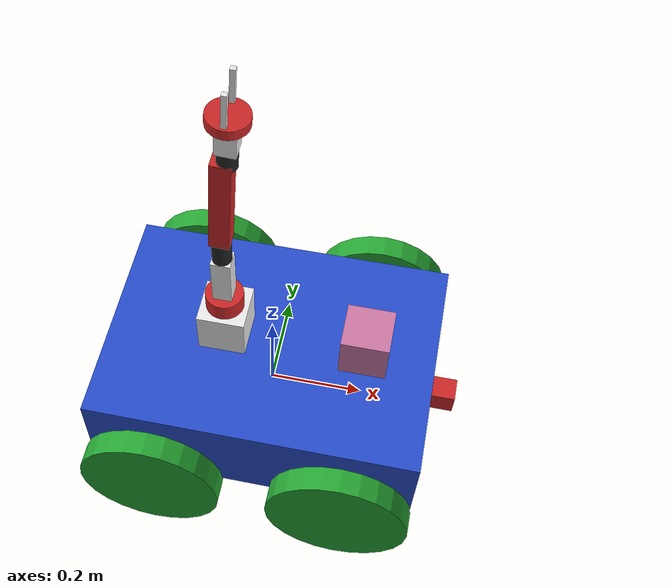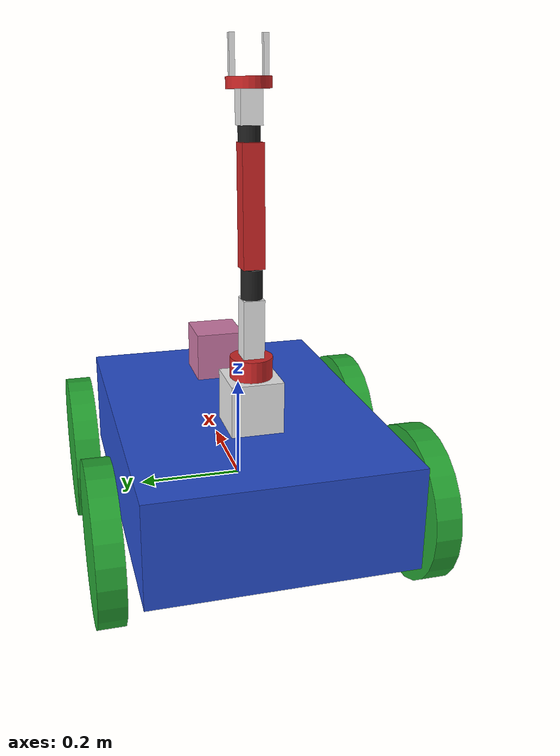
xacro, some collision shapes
<?xml version='1.0'?>

<robot name="atom" xmlns:xacro="http://www.ros.org/wiki/xacro">
	<xacro:property name="robot_name" value="atom" />
	<xacro:property name="robot_chassis_mass" value="35"/>
	<xacro:property name="robot_chassis_length" value="0.2"/>
	<xacro:property name="robot_chassis_radius" value="0.25"/>
	<xacro:property name="robot_caster_wheel_radius" value="0.05"/>
	<xacro:property name="robot_caster_wheel_radius_collision" value="0.0499"/>

	<xacro:property name="robot_wheel_mass" value="3"/>
	<xacro:property name="robot_wheel_length" value="0.05"/>
	<xacro:property name="robot_wheel_radius" value="0.15"/>

	<xacro:property name="camera_mass" value="0.1"/>
	<xacro:property name="hokoyu_mass" value="1e-5"/>

	<!-- Make Chassis of Bot -->
	<link name="chassis">
		<pose>0 0 0.1 0 0 0</pose>

		<inertial>
			<mass value="${robot_chassis_mass}"/>
      		<origin xyz="0.0 0 0" rpy=" 0 0 0"/>

      		<inertia
      			ixx="0.725" ixy="0" ixz="0"
      			iyy="1.325" iyz="0"
      			izz="1.85"
      		/>
		</inertial>

		<collision name="collision">
			<origin xyz="0 0 0.05" rpy=" 0 0 0"/>
			<geometry>
				<box size="0.7 0.5 0.2"/>
			</geometry>
		</collision>

		<visual name="chassis_visual">
			<origin xyz="0 0 0.05" rpy=" 0 0 0"/>
			<geometry>
				<box size="0.7 0.5 0.2"/>
			</geometry>

		</visual>

	</link>

	<!-- Right Wheel Back -->
	<link name="right_wheel_back">
		<inertial>
			<mass value="${robot_wheel_mass}"/>
			<origin xyz="0 0 0" rpy="0 1.5707 1.5707"/>
			<inertia
				ixx="0.0175" ixy="0.0" ixz="0.0"
				iyy="0.0175" iyz="0.0"
				izz="0.03375"
			/>
		</inertial>

		<visual>
			<origin xyz="0 0 0" rpy="0 1.5707 1.5707"/>
			<geometry>
				<cylinder radius="${robot_wheel_radius}" length="${robot_wheel_length}"/>
			</geometry>
		</visual>

		<collision>
			<origin xyz="0 0 0" rpy="0 1.5707 1.5707"/>
			<geometry>
				<cylinder radius="${robot_wheel_radius}" length="${robot_wheel_length}"/>
			</geometry>
		</collision>

	</link>

	<!-- Right Wheel Front-->
	<link name="right_wheel_front">
	<inertial>
			<mass value="${robot_wheel_mass}"/>
			<origin xyz="0 0 0" rpy="0 1.5707 1.5707"/>
			<inertia
				ixx="0.0175" ixy="0.0" ixz="0.0"
				iyy="0.0175" iyz="0.0"
				izz="0.03375"
			/>
		</inertial>

		<visual>
			<origin xyz="0 0 0" rpy="0 1.5707 1.5707"/>
			<geometry>
				<cylinder radius="${robot_wheel_radius}" length="${robot_wheel_length}"/>
			</geometry>
		</visual>

		<collision>
			<origin xyz="0 0 0" rpy="0 1.5707 1.5707"/>
			<geometry>
				<cylinder radius="${robot_wheel_radius}" length="${robot_wheel_length}"/>
			</geometry>
		</collision>

	</link>

	<!-- Left wheel Back-->
	<link name="left_wheel_back">
		<inertial>
			<mass value="${robot_wheel_mass}"/>
			<origin xyz="0 0 0" rpy="0 1.5707 1.5707"/>
			<inertia
				ixx="0.0175" ixy="0.0" ixz="0.0"
				iyy="0.0175" iyz="0.0"
				izz="0.03375"
			/>
		</inertial>

		<visual>
			<origin xyz="0 0 0" rpy="0 1.5707 1.5707"/>
			<geometry>
				<cylinder radius="${robot_wheel_radius}" length="${robot_wheel_length}"/>
			</geometry>
		</visual>

		<collision>
			<origin xyz="0 0 0" rpy="0 1.5707 1.5707"/>
			<geometry>
				<cylinder radius="${robot_wheel_radius}" length="${robot_wheel_length}"/>
			</geometry>
		</collision>

	</link>

	<!-- Left wheel Front-->
	<link name="left_wheel_front">
		<inertial>
			<mass value="${robot_wheel_mass}"/>
			<origin xyz="0 0 0" rpy="0 1.5707 1.5707"/>
			<inertia
				ixx="0.0175" ixy="0.0" ixz="0.0"
				iyy="0.0175" iyz="0.0"
				izz="0.03375"
			/>
		</inertial>

		<visual>
			<origin xyz="0 0 0" rpy="0 1.5707 1.5707"/>
			<geometry>
				<cylinder radius="${robot_wheel_radius}" length="${robot_wheel_length}"/>
			</geometry>
		</visual>

		<collision>
			<origin xyz="0 0 0" rpy="0 1.5707 1.5707"/>
			<geometry>
				<cylinder radius="${robot_wheel_radius}" length="${robot_wheel_length}"/>
			</geometry>
		</collision>

	</link>

	<!-- Camera -->
	<link name="camera">
		<inertial>
			<mass value="${camera_mass}"/>
			<origin xyz="0 0 0" rpy="0 0 0"/>
			<inertia
		        ixx="1e-6" ixy="0.0" ixz="0.0"
		        iyy="1e-6" iyz="0.0"
		        izz="1e-6"
		      />
		</inertial>

		<visual>
			<origin xyz="0 0 0" rpy="0 0 0"/>
			<geometry>
				<box size="0.05 0.05 0.05"/>
			</geometry>
		</visual>

		<collision>
			<origin xyz="0 0 0" rpy="0 0 0"/>
			<geometry>
				<box size="0.05 0.05 0.05"/>
			</geometry>
		</collision>
	</link>

	<!-- Hokuyo Lidar -->
	<link name="hokuyo">
		<inertial>
			<mass value="${hokoyu_mass}"/>
			<origin xyz="0 0 0" rpy="0 0 0"/>

			<inertia
		        ixx="1e-6" ixy="0.0" ixz="0.0"
		        iyy="1e-6" iyz="0.0"
		        izz="1e-6"
		      />
		</inertial>

		<visual>
			<origin xyz="0 0 0" rpy="0 0 0"/>
			<geometry>
				<mesh filename="package://atom/meshes/hokuyo.dae"/>
			</geometry>
		</visual>

		<collision>
			<origin xyz="0 0 0" rpy="0 0 0"/>
			<geometry>
				<box size="0.1 0.1 0.1"/>
			</geometry>
		</collision>
	</link>

	<!-- Project center to the ground -->
	<link name="robot_footprint"></link>

	<!-- Define Joints -->

	<!-- Right Wheel Joint Back-->
	<joint type="continuous" name="right_wheel_hinge_back">
	    <origin xyz="-0.2 -0.30 0" rpy="0 0 0" />
	    <parent link="chassis"/>
	    <child link="right_wheel_back" />
	    <axis xyz="0 1 0" rpy="0 0 0" />
	    <limit effort="10000" velocity="1000" />
	    <dynamics damping="1.0" friction="1.0" />
	</joint>

	<!-- Right Wheel Joint Front-->
	<joint type="continuous" name="right_wheel_hinge_front">
	    <origin xyz="0.2 -0.30 0" rpy="0 0 0" />
	    <parent link="chassis"/>
	    <child link="right_wheel_front" />
	    <axis xyz="0 1 0" rpy="0 0 0" />
	    <limit effort="10000" velocity="1000" />
	    <dynamics damping="1.0" friction="1.0" />
	</joint>

	<!-- Left Wheel Joint Back-->
	<joint type="continuous" name="left_wheel_hinge_back">
	    <origin xyz="-0.2 0.30 0" rpy="0 0 0" />
	    <parent link="chassis"/>
	    <child link="left_wheel_back" />
	    <axis xyz="0 1 0" rpy="0 0 0" />
	    <limit effort="10000" velocity="1000" />
	    <dynamics damping="1.0" friction="1.0" />
	</joint>

	<!-- Left Wheel Joint Front-->
	<joint type="continuous" name="left_wheel_hinge_front">
	    <origin xyz="0.2 0.30 0" rpy="0 0 0" />
	    <parent link="chassis"/>
	    <child link="left_wheel_front" />
	    <axis xyz="0 1 0" rpy="0 0 0" />
	    <limit effort="10000" velocity="1000" />
	    <dynamics damping="1.0" friction="1.0" />
	</joint>

	<!-- Camera Joint -->
	<joint name="camera_joint" type="fixed">
		<origin xyz="0.38 0 0.05" rpy="0 0 0" />
		<parent link="chassis"/>
		<child link="camera" />
		<axis xyz="0 1 0"/>
	</joint>

	<!-- Hokoyu Joint -->
	<joint name="hokuyo_joint" type="fixed">
	    <origin xyz="0.2 0 0.2" rpy="0 0 0" />
	    <parent link="chassis"/>
	    <child link="hokuyo" />
	    <axis xyz="0 1 0"/>
	</joint>

	<joint name="robot_footprint_joint" type="fixed">
		<origin xyz="0 0 0" rpy="0 0 0" />
		<parent link="robot_footprint"/>
		<child link="chassis" />
	</joint>

	<!-- Color of bot -->
	<gazebo reference="left_wheel_front">
		<material>Gazebo/Green</material>
		<kp>1000000.0</kp> <!-- kp and kd for rubber -->
		<kd>100.0</kd>
		<mu1>1.0</mu1>
		<mu2>1.0</mu2>
		<maxVel>1.0</maxVel>
		<minDepth>0.00</minDepth>
	</gazebo>

	<gazebo reference="left_wheel_back">
		<material>Gazebo/Green</material>
		<kp>1000000.0</kp> <!-- kp and kd for rubber -->
		<kd>100.0</kd>
		<mu1>1.0</mu1>
		<mu2>1.0</mu2>
		<maxVel>1.0</maxVel>
		<minDepth>0.00</minDepth>
	</gazebo>

	<gazebo reference="right_wheel_front">
		<material>Gazebo/Green</material>
		<kp>1000000.0</kp> <!-- kp and kd for rubber -->
		<kd>100.0</kd>
		<mu1>1.0</mu1>
		<mu2>1.0</mu2>
		<maxVel>1.0</maxVel>
		<minDepth>0.00</minDepth>
	</gazebo>
	<gazebo reference="right_wheel_back">
		<material>Gazebo/Green</material>
		<kp>1000000.0</kp> <!-- kp and kd for rubber -->
		<kd>100.0</kd>
		<mu1>1.0</mu1>
		<mu2>1.0</mu2>
		<maxVel>1.0</maxVel>
		<minDepth>0.00</minDepth>
	</gazebo>

	<gazebo reference="camera">
		<material>Gazebo/Red</material>
	</gazebo>

	<gazebo reference="chassis">
		<material>Gazebo/Blue</material>
	</gazebo>

	<link name="arm_base">
    <visual>
      <origin rpy="1.570795 0 0" xyz="0 0 0"/>
      <!-- rotate PI/2 -->
      <geometry>
        <box size="0.1 0.1 0.1"/>
      </geometry>
      <material name="White"/>
    </visual>
    <collision>
      <origin rpy="1.570795 0 0" xyz="0 0 0"/>
      <!-- rotate PI/2 -->
      <geometry>
        <box size="0.1 0.1 0.1"/>
      </geometry>
    </collision>
    &gt;

    <inertial>
      <mass value="1"/>
      <inertia ixx="1.0" ixy="0.0" ixz="0.0" iyy="0.5" iyz="0.0" izz="1.0"/>
    </inertial>
  </link>

	<joint type="fixed" name="arm_base_joint">
	    <origin xyz="-0.1 0.0 0.2" rpy="0 0 0" />
	    <parent link="chassis"/>
	    <child link="arm_base" />
	    <axis xyz="0 0 1" rpy="0 0 0" />
	</joint>

	<link name="shoulder_pan_link">
    <visual>
      <origin rpy="0 1.570795 0" xyz="0 0 0"/>
      <geometry>
        <cylinder length="0.08" radius="0.04"/>
      </geometry>
      <material name="Red"/>
    </visual>
    <collision>
      <origin rpy="0 1.570795 0" xyz="0 0 0"/>
      <geometry>
        <cylinder length="0.08" radius="0.04"/>
      </geometry>
    </collision>
    <inertial>
      <mass value="1"/>
      <inertia ixx="1.0" ixy="0.0" ixz="0.0" iyy="0.5" iyz="0.0" izz="1.0"/>
    </inertial>
  </link>

  <joint name="shoulder_pan_joint" type="revolute">
    <parent link="arm_base"/>
    <child link="shoulder_pan_link"/>
    <origin rpy="0 1.570795 0.0" xyz="0 0 0.05"/>
    <axis xyz="-1 0 0"/>
    <limit effort="300" lower="-2.61799387799" upper="1.98394848567" velocity="1"/>
    <dynamics damping="50" friction="1"/>
  </joint>

  <joint name="shoulder_pitch_joint" type="revolute">
    <parent link="shoulder_pan_link"/>
    <child link="shoulder_pitch_link"/>
    <origin rpy="-1.570795 0 1.570795" xyz="-0.041 0.0021 0.0"/>
    <axis xyz="1 0 0"/>
    <limit effort="300" lower="-1.19962513147" upper="1.89994105047" velocity="1"/>
    <dynamics damping="50" friction="1"/>
  </joint>
  <!-- SHOULDER PITCH LINK -->
  <link name="shoulder_pitch_link">
    <visual>
      <origin rpy="0 1.570795 0" xyz="-0.002 0 0.04"/>
      <geometry>
        <box size="0.14 0.04 0.04"/>
      </geometry>
      <material name="White"/>
    </visual>
    <collision>
      <origin rpy="0 1.570795 0" xyz="-0.002 0 0.04"/>
      <geometry>
        <box size="0.14 0.04 0.04"/>
      </geometry>
    </collision>
    <inertial>
      <mass value="1"/>
      <inertia ixx="1.0" ixy="0.0" ixz="0.0" iyy="0.5" iyz="0.0" izz="1.0"/>
    </inertial>
  </link>
  <gazebo reference="shoulder_pitch_link">
    <material>Gazebo/White</material>
  </gazebo>

	<joint name="elbow_roll_joint" type="revolute">
    <parent link="shoulder_pitch_link"/>
    <child link="elbow_roll_link"/>
    <origin rpy="3.14159 1.570795 0" xyz="-0.002 0 0.1206"/>
    <axis xyz="-1 0 0"/>
    <limit effort="300" lower="-2.61799387799" upper="0.705631162427" velocity="1"/>
    <dynamics damping="50" friction="1"/>
  </joint>
  <!-- ELBOW ROLL LINK -->
  <link name="elbow_roll_link">
    <visual>
      <origin rpy="0 1.570795 0" xyz="-0.015 0.0 -0.0"/>
      <geometry>
        <cylinder length="0.06" radius="0.02"/>
      </geometry>
      <material name="Black"/>
    </visual>
    <collision>
      <origin rpy="0 1.570795 0" xyz="-0.015 0.0 -0.0"/>
      <geometry>
        <cylinder length="0.06" radius="0.02"/>
      </geometry>
    </collision>
    <inertial>
      <mass value="1"/>
      <inertia ixx="1.0" ixy="0.0" ixz="0.0" iyy="0.5" iyz="0.0" izz="1.0"/>
    </inertial>
  </link>
  <gazebo reference="elbow_roll_link">
    <material>Gazebo/Black</material>
  </gazebo>

  <joint name="elbow_pitch_joint" type="revolute">
    <parent link="elbow_roll_link"/>
    <child link="elbow_pitch_link"/>
    <origin rpy="0.055 1.570795 0" xyz="-0.035 0 0.0"/>
    <axis xyz="1 0 0"/>
    <limit effort="300" lower="-1.5953400194" upper="1.93281579274" velocity="1"/>
    <dynamics damping="50" friction="1"/>
  </joint>
  <!-- ELBOW PITCH LINK -->
  <link name="elbow_pitch_link">
    <visual>
      <origin rpy="0 1.570795 0" xyz="0 0 -0.12"/>
      <geometry>
        <box size="0.22 0.04 0.04"/>
      </geometry>
      <material name="Red"/>
    </visual>
    <collision>
      <origin rpy="0 1.570795 0" xyz="0 0 -0.12"/>
      <geometry>
        <box size="0.22 0.04 0.04"/>
      </geometry>
    </collision>
    <inertial>
      <mass value="1"/>
      <inertia ixx="1.0" ixy="0.0" ixz="0.0" iyy="0.5" iyz="0.0" izz="1.0"/>
    </inertial>
  </link>
  <gazebo reference="elbow_pitch_link">
    <material>Gazebo/Red</material>
  </gazebo>

  <joint name="wrist_roll_joint" type="revolute">
    <parent link="elbow_pitch_link"/>
    <child link="wrist_roll_link"/>
    <origin rpy="0 1.570795 3.14159" xyz="0.0 0.0081 -.248"/>
    <axis xyz="1 0 0"/>
    <limit effort="300" lower="-2.61799387799" upper="2.6128806087" velocity="1"/>
    <dynamics damping="50" friction="1"/>
  </joint>
  <!-- WRIST ROLL LINK -->
  <link name="wrist_roll_link">
    <visual>
      <origin rpy="0 1.570795 0" xyz="0 0 0"/>
      <geometry>
        <cylinder length="0.06" radius="0.02"/>
      </geometry>
      <material name="Black"/>
    </visual>
    <collision>
      <origin rpy="0 1.570795 0" xyz="0 0 0"/>
      <geometry>
        <cylinder length="0.06" radius="0.02"/>
      </geometry>
    </collision>
    <inertial>
      <mass value="1"/>
      <inertia ixx="1.0" ixy="0.0" ixz="0.0" iyy="0.5" iyz="0.0" izz="1.0"/>
    </inertial>
  </link>
  <gazebo reference="wrist_roll_link">
    <material>Gazebo/Black</material>
  </gazebo>
  <joint name="wrist_pitch_joint" type="revolute">
    <parent link="wrist_roll_link"/>
    <child link="wrist_pitch_link"/>
    <origin rpy="0 1.570795 0" xyz="0.0 0.0 0.0001"/>
    <axis xyz="1 0 0"/>
    <limit effort="300" lower="-1.5953400194" upper="1.98394848567" velocity="1"/>
    <dynamics damping="50" friction="1"/>
  </joint>
  <!-- WRIST PITCH LINK -->
  <link name="wrist_pitch_link">
    <visual>
      <origin rpy="0 1.570795 0" xyz="0 0 0.04"/>
      <geometry>
        <box size="0.06 0.04 0.04"/>
      </geometry>
      <material name="White"/>
    </visual>
    <collision>
      <origin rpy="0 1.570795 0" xyz="0 0 0.04 "/>
      <geometry>
        <box size="0.06 0.04 0.04"/>
      </geometry>
    </collision>
    <inertial>
      <mass value="1"/>
      <inertia ixx="1.0" ixy="0.0" ixz="0.0" iyy="0.5" iyz="0.0" izz="1.0"/>
    </inertial>
  </link>
  <gazebo reference="wrist_pitch_link">
    <material>Gazebo/White</material>
  </gazebo>

	 <joint name="gripper_roll_joint" type="revolute">
    <parent link="wrist_pitch_link"/>
    <child link="gripper_roll_link"/>
    <origin rpy="4.712385 -1.570795 0" xyz="0 0 0.080"/>
    <axis xyz="1 0 0"/>
    <limit effort="300" lower="-3.14" upper="3.14" velocity="1"/>
    <dynamics damping="50" friction="1"/>
  </joint>
  <!-- GRIPPER ROLL LINK -->
  <link name="gripper_roll_link">
    <visual>
      <origin rpy="0 1.570795 0" xyz="0 0 0"/>
      <geometry>
        <cylinder length="0.02" radius="0.04"/>
      </geometry>
      <material name="Red"/>
    </visual>
    <collision>
      <origin rpy="0 1.570795 0" xyz="0 0 0"/>
      <geometry>
        <cylinder length="0.02" radius="0.04"/>
      </geometry>
    </collision>
    <inertial>
      <mass value="1"/>
      <inertia ixx="1.0" ixy="0.0" ixz="0.0" iyy="0.5" iyz="0.0" izz="1.0"/>
    </inertial>
  </link>
  <gazebo reference="gripper_roll_link">
    <material>Gazebo/Red</material>
  </gazebo>
  <joint name="finger_joint1" type="prismatic">
    <parent link="gripper_roll_link"/>
    <child link="gripper_finger_link1"/>
    <origin xyz="0.0 0 0"/>
    <axis xyz="0 1 0"/>
    <limit effort="100" lower="0" upper="0.03" velocity="1.0"/>
    <safety_controller k_position="20" k_velocity="20" soft_lower_limit="-0.15" soft_upper_limit="0.0"/>
    <dynamics damping="50" friction="1"/>
  </joint>
  <!-- LEFT GRIPPER AFT LINK -->
  <link name="gripper_finger_link1">
    <visual>
      <origin xyz="0.04 -0.03 0"/>
      <geometry>
        <box size="0.08 0.01 0.01"/>
      </geometry>
      <material name="White"/>
    </visual>
    <inertial>
      <mass value="1"/>
      <inertia ixx="1.0" ixy="0.0" ixz="0.0" iyy="0.5" iyz="0.0" izz="1.0"/>
    </inertial>
  </link>
  <gazebo reference="l_gripper_aft_link">
    <material>Gazebo/White</material>
  </gazebo>
  <!-- Joint between Wrist roll and finger 2 -->
  <joint name="finger_joint2" type="prismatic">
    <parent link="gripper_roll_link"/>
    <child link="gripper_finger_link2"/>
    <origin xyz="0.0 0 0"/>
    <axis xyz="0 1 0"/>
    <limit effort="1" lower="-0.03" upper="0" velocity="1.0"/>
    <dynamics damping="50" friction="1"/>
  </joint>
  <!-- RIGHT GRIPPER AFT LINK -->
  <link name="gripper_finger_link2">
    <visual>
      <origin xyz="0.04 0.03 0"/>
      <geometry>
        <box size="0.08 0.01 0.01"/>
      </geometry>
      <material name="White"/>
    </visual>
    <inertial>
      <mass value="1"/>
      <inertia ixx="1.0" ixy="0.0" ixz="0.0" iyy="0.5" iyz="0.0" izz="1.0"/>
    </inertial>
  </link>
  <gazebo reference="r_gripper_aft_link">
    <material>Gazebo/White</material>
  </gazebo>
  <transmission name="tran1">
    <type>transmission_interface/SimpleTransmission</type>
    <joint name="shoulder_pan_joint">
      <hardwareInterface>hardware_interface/PositionJointInterface</hardwareInterface>
    </joint>
    <actuator name="motor1">
      <hardwareInterface>hardware_interface/PositionJointInterface</hardwareInterface>
      <mechanicalReduction>1</mechanicalReduction>
    </actuator>
  </transmission>
  <transmission name="tran1">
    <type>transmission_interface/SimpleTransmission</type>
    <joint name="shoulder_pitch_joint">
      <hardwareInterface>hardware_interface/PositionJointInterface</hardwareInterface>
    </joint>
    <actuator name="motor1">
      <hardwareInterface>hardware_interface/PositionJointInterface</hardwareInterface>
      <mechanicalReduction>1</mechanicalReduction>
    </actuator>
  </transmission>
  <transmission name="tran1">
    <type>transmission_interface/SimpleTransmission</type>
    <joint name="elbow_roll_joint">
      <hardwareInterface>hardware_interface/PositionJointInterface</hardwareInterface>
    </joint>
    <actuator name="motor1">
      <hardwareInterface>hardware_interface/PositionJointInterface</hardwareInterface>
      <mechanicalReduction>1</mechanicalReduction>
    </actuator>
  </transmission>
  <transmission name="tran1">
    <type>transmission_interface/SimpleTransmission</type>
    <joint name="elbow_pitch_joint">
      <hardwareInterface>hardware_interface/PositionJointInterface</hardwareInterface>
    </joint>
    <actuator name="motor1">
      <hardwareInterface>hardware_interface/PositionJointInterface</hardwareInterface>
      <mechanicalReduction>1</mechanicalReduction>
    </actuator>
  </transmission>
  <transmission name="tran1">
    <type>transmission_interface/SimpleTransmission</type>
    <joint name="wrist_roll_joint">
      <hardwareInterface>hardware_interface/PositionJointInterface</hardwareInterface>
    </joint>
    <actuator name="motor1">
      <hardwareInterface>hardware_interface/PositionJointInterface</hardwareInterface>
      <mechanicalReduction>1</mechanicalReduction>
    </actuator>
  </transmission>
  <transmission name="tran1">
    <type>transmission_interface/SimpleTransmission</type>
    <joint name="wrist_pitch_joint">
      <hardwareInterface>hardware_interface/PositionJointInterface</hardwareInterface>
    </joint>
    <actuator name="motor1">
      <hardwareInterface>hardware_interface/PositionJointInterface</hardwareInterface>
      <mechanicalReduction>1</mechanicalReduction>
    </actuator>
  </transmission>
  <transmission name="tran1">
    <type>transmission_interface/SimpleTransmission</type>
    <joint name="gripper_roll_joint">
      <hardwareInterface>hardware_interface/PositionJointInterface</hardwareInterface>
    </joint>
    <actuator name="motor1">
      <hardwareInterface>hardware_interface/PositionJointInterface</hardwareInterface>
      <mechanicalReduction>1</mechanicalReduction>
    </actuator>
  </transmission>
  <transmission name="tran1">
    <type>transmission_interface/SimpleTransmission</type>
    <joint name="finger_joint1">
      <hardwareInterface>hardware_interface/PositionJointInterface</hardwareInterface>
    </joint>
    <actuator name="motor1">
      <hardwareInterface>hardware_interface/PositionJointInterface</hardwareInterface>
      <mechanicalReduction>1</mechanicalReduction>
    </actuator>
  </transmission>
  <transmission name="tran1">
    <type>transmission_interface/SimpleTransmission</type>
    <joint name="finger_joint2">
      <hardwareInterface>hardware_interface/PositionJointInterface</hardwareInterface>
    </joint>
    <actuator name="motor1">
      <hardwareInterface>hardware_interface/PositionJointInterface</hardwareInterface>
      <mechanicalReduction>1</mechanicalReduction>
    </actuator>
  </transmission>

  <transmission name="left_front_wheel_trans">
      <type>transmission_interface/SimpleTransmission</type>
      <actuator name="left_front_wheel_motor">
        <mechanicalReduction>1</mechanicalReduction>
      </actuator>
      <joint name="left_wheel_hinge_front">
        <hardwareInterface>hardware_interface/VelocityJointInterface</hardwareInterface>
      </joint>
</transmission>

<transmission name="left_back_wheel_trans">
      <type>transmission_interface/SimpleTransmission</type>
      <actuator name="_wheel_hinge_back">
        <mechanicalReduction>1</mechanicalReduction>
      </actuator>
      <joint name="left_wheel_hinge_back">
        <hardwareInterface>hardware_interface/VelocityJointInterface</hardwareInterface>
      </joint>
</transmission>

<transmission name="right_front_wheel_trans">
      <type>transmission_interface/SimpleTransmission</type>
      <actuator name="right_front_wheel_motor">
        <mechanicalReduction>1</mechanicalReduction>
      </actuator>
      <joint name="right_wheel_hinge_front">
        <hardwareInterface>hardware_interface/VelocityJointInterface</hardwareInterface>
      </joint>
</transmission>

<transmission name="right_back_wheel_trans">
      <type>transmission_interface/SimpleTransmission</type>
      <actuator name="right_back_wheel_motor">
        <mechanicalReduction>1</mechanicalReduction>
      </actuator>
      <joint name="right_wheel_hinge_back">
        <hardwareInterface>hardware_interface/VelocityJointInterface</hardwareInterface>
      </joint>
</transmission>

	<!-- Motor, Camera and Lidar Simulation -->
	<xacro:include filename="$(find atom)/urdf/atom.gazebo" />

</robot>
